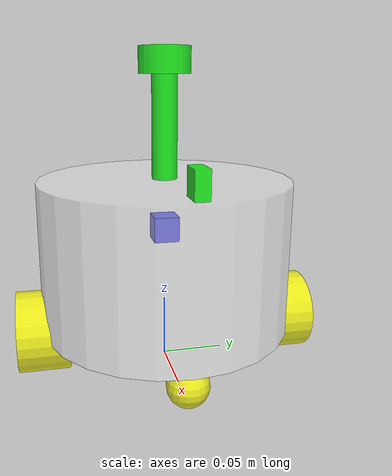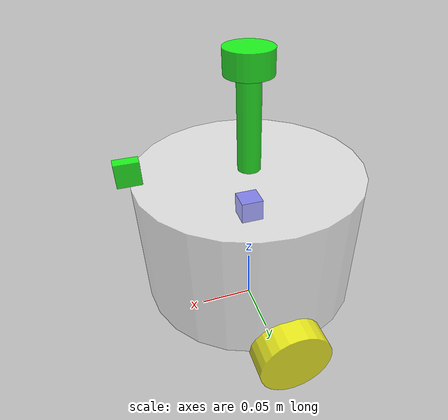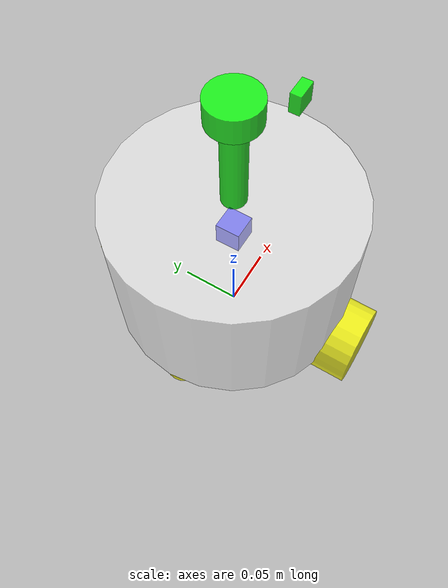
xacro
<?xml version="1.0"?>
<robot xmlns:xacro="http://www.ros.org/wiki/xacro" name="fishbot">

    <!-- 包含基座宏定义 -->
    <xacro:include filename="$(find fishbot_description)/urdf/fishbot/base.urdf.xacro" />
    <!-- 包含传感器宏定义 -->
    <xacro:include filename="$(find fishbot_description)/urdf/fishbot/sensor/imu.urdf.xacro" />
    <xacro:include filename="$(find fishbot_description)/urdf/fishbot/sensor/camera.urdf.xacro" />
    <xacro:include filename="$(find fishbot_description)/urdf/fishbot/sensor/laser.urdf.xacro" />
    <!-- 包含轮子宏定义 -->
    <xacro:include filename="$(find fishbot_description)/urdf/fishbot/actuator/wheel.urdf.xacro" />
    <xacro:include filename="$(find fishbot_description)/urdf/fishbot/actuator/caster.urdf.xacro" />
    <!-- 包含gazebo插件宏定义 -->
    <xacro:include filename="$(find fishbot_description)/urdf/fishbot/plugins/fishbot_gazebo.xacro" />
    <!-- 包含ros2_control宏定义 -->
    <xacro:include filename="$(find fishbot_description)/urdf/fishbot/ros2_control/mobile_base.ros2_control.xacro" />

    <!-- 基座 -->
    <xacro:base_xacro length="0.12" radius="0.1" />
    <!-- 传感器 -->
    <xacro:imu_xacro xyz="0 0 0.02" />
    <xacro:camera_xacro xyz="0.1 0 0.075" />
    <xacro:laser_xacro xyz="0 0 0.1" />
    <!-- 轮子 -->
    <xacro:wheel_xacro wheel_name="left" xyz="0 0.10 -0.06" />
    <xacro:wheel_xacro wheel_name="right" xyz="0 -0.10 -0.06" />
    <xacro:caster_xacro caster_name="front" xyz="0.08 0.0 -0.076" />
    <xacro:caster_xacro caster_name="back" xyz="-0.08 0.0 -0.076" />

</robot>

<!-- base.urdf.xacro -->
<robot xmlns:xacro="http://www.ros.org/wiki/xacro">
    <!-- 包含惯性宏定义 -->
    <xacro:include filename="$(find fishbot_description)/urdf/fishbot/common_inertia.xacro" />

    <!-- 机器人底座 -->
    <xacro:macro name="base_xacro" params="length radius">
        <link name="base_footprint"/>

        <joint name="base_link_joint" type="fixed">
            <parent link="base_footprint"/>
            <child link="base_link"/>
            <origin xyz="0 0 ${length/2.0+0.032-0.001}" rpy="0 0 0"/>
        </joint>

        <link name="base_link">
            <visual>
                <origin xyz="0 0 0" rpy="0 0 0"/>
                <geometry>
                    <cylinder length="${length}" radius="${radius}" />
                </geometry>
                <material name="white">
                    <color rgba="1.0 1.0 1.0 0.5"/>
                </material>
            </visual>

            <collision>
                <origin xyz="0 0 0" rpy="0 0 0"/>
                <geometry>
                    <cylinder length="${length}" radius="${radius}" />
                </geometry>
            </collision>

            <inertial>
                <xacro:cylinder_inertia m="1.0" r="${radius}" h="${length}" />
            </inertial>
        </link>
    </xacro:macro>
</robot>

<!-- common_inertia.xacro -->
<robot xmlns:xacro="http://ros.org/wiki/xacro">
    <xacro:macro name="box_inertia" params="m w h d">
        <mass value="${m}" />
        <inertia ixx="${(m/12) * (h*h + d*d)}" ixy="0.0" ixz="0.0"
                 iyy="${(m/12) * (w*w + d*d)}" iyz="0.0"
                 izz="${(m/12) * (w*w + h*h)}" />
    </xacro:macro>

    <xacro:macro name="cylinder_inertia" params="m r h">
        <mass value="${m}" />
        <inertia ixx="${(m/12) * (3*r*r + h*h)}" ixy="0.0" ixz="0.0"
                 iyy="${(m/12) * (3*r*r + h*h)}" iyz="0.0"
                 izz="${(m/2) * r*r}" />
    </xacro:macro>

    <xacro:macro name="sphere_inertia" params="m r">
        <mass value="${m}" />
        <inertia ixx="${(2.0/5.0) * m * r*r}" ixy="0.0" ixz="0.0"
                 iyy="${(2.0/5.0) * m * r*r}" iyz="0.0"
                 izz="${(2.0/5.0) * m * r*r}" />
    </xacro:macro>
</robot>

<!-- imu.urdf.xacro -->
<robot xmlns:xacro="http://www.ros.org/wiki/xacro">
    <xacro:include filename="$(find fishbot_description)/urdf/fishbot/common_inertia.xacro" />
    <!-- IMU传感器 -->
    <xacro:macro name="imu_xacro" params="xyz">
        <link name="imu_link">
            <visual>
                <origin xyz="0 0 0" rpy="0 0 0"/>
                <geometry>
                    <box size="0.02 0.02 0.02" />
                </geometry>
                <material name="black">
                    <color rgba="0 0 0.8" />
                </material>
            </visual>

            <collision>
                <origin xyz="0 0 0" rpy="0 0 0"/>
                <geometry>
                    <box size="0.02 0.02 0.02" />
                </geometry>
                <material name="black">
                    <color rgba="0 0 0.8" />
                </material>
            </collision>

            <inertial>
                <xacro:box_inertia m="0.05" w="0.02" h="0.02" d="0.02" />
            </inertial>
        </link>

        <joint name="imu_joint" type="fixed">
            <parent link="base_link"/>
            <child link="imu_link"/>
            <origin xyz="${xyz}" />
        </joint>
    </xacro:macro>
</robot>

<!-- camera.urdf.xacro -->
<robot xmlns:xacro="http://www.ros.org/wiki/xacro">
    <xacro:include filename="$(find fishbot_description)/urdf/fishbot/common_inertia.xacro" />
    <!-- RGB-D相机传感器 -->
    <xacro:macro name="camera_xacro" params="xyz">
        <link name="camera_link">
            <visual>
                <origin xyz="0 0 0" rpy="0 0 0" />
                <geometry>
                    <box size="0.02 0.01 0.02" />
                </geometry>
                <material name="green">
                    <color rgba="0 1.0 0 0.8" />
                </material>
            </visual>

            <collision>
                <origin xyz="0 0 0" rpy="0 0 0" />
                <geometry>
                    <box size="0.02 0.01 0.02" />
                </geometry>
                <material name="green">
                    <color rgba="0 1.0 0 0.8" />
                </material>
            </collision>

            <inertial>
                <xacro:box_inertia m="0.1" w="0.02" h="0.01" d="0.02" />
            </inertial>
        </link>

        <joint name="camera_joint" type="fixed">
            <parent link="base_link" />
            <child link="camera_link" />
            <origin xyz="${xyz}" />
        </joint>

    </xacro:macro>
</robot>

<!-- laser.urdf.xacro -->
<robot xmlns:xacro="http://www.ros.org/wiki/xacro">
    <xacro:include filename="$(find fishbot_description)/urdf/fishbot/common_inertia.xacro" />

    <!-- 激光雷达传感器 -->
    <xacro:macro name="laser_xacro" params="xyz">

        <!-- 雷达支撑柱 -->
        <link name="laser_cylinder_link">
            <visual>
                <origin xyz="0 0 0" rpy="0 0 0"/>
                <geometry>
                    <cylinder length="0.1" radius="0.01"/>
                </geometry>
                <material name="green">
                    <color rgba="0 1.0 0 0.8"/>
                </material>
            </visual>

            <collision>
                <origin xyz="0 0 0" rpy="0 0 0"/>
                <geometry>
                    <cylinder length="0.1" radius="0.01"/>
                </geometry>
            </collision>

            <inertial>
                <xacro:cylinder_inertia m="0.05" r="0.01" h="0.1"/>
            </inertial>
        </link>

        <joint name="laser_cylinder_joint" type="fixed">
            <parent link="base_link"/>
            <child link="laser_cylinder_link"/>
            <origin xyz="${xyz}"/>
        </joint>

        <!-- 雷达主体 -->
        <link name="laser_link">
            <visual>
                <origin xyz="0 0 0" rpy="0 0 0"/>
                <geometry>
                    <cylinder length="0.02" radius="0.02"/>
                </geometry>
                <material name="green">
                    <color rgba="0 1.0 0 0.8"/>
                </material>
            </visual>

            <collision>
                <origin xyz="0 0 0" rpy="0 0 0"/>
                <geometry>
                    <cylinder length="0.02" radius="0.02"/>
                </geometry>
            </collision>

            <inertial>
                <xacro:cylinder_inertia m="0.10" r="0.02" h="0.02"/>
            </inertial>
        </link>

        <joint name="laser_joint" type="fixed">
            <parent link="laser_cylinder_link"/>
            <child link="laser_link"/>
            <origin xyz="0 0 0.05"/>
        </joint>

    </xacro:macro>
</robot>

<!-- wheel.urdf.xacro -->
<robot xmlns:xacro="http://www.ros.org/wiki/xacro">
    <xacro:include filename="$(find fishbot_description)/urdf/fishbot/common_inertia.xacro" />
    <!-- 轮子宏定义 -->
    <xacro:macro name="wheel_xacro" params="wheel_name xyz">
        <link name="${wheel_name}_wheel_link">
            <visual>
                <origin xyz="0 0 0" rpy="1.57079 0 0" />
                <geometry>
                    <cylinder radius="0.032" length="0.04"/>
                </geometry>
                <material name="yellow">
                    <color rgba="1.0 1.0 0 0.8" />
                </material>
            </visual>

            <collision>
                <origin xyz="0 0 0" rpy="1.57079 0 0" />
                <geometry>
                    <cylinder radius="0.032" length="0.04"/>
                </geometry>
                <material name="yellow">
                    <color rgba="1.0 1.0 0 0.8" />
                </material>
            </collision>

            <inertial>
                <xacro:cylinder_inertia m="0.05" r="0.032" h="0.04" />
            </inertial>
        </link>

        <joint name="${wheel_name}_wheel_joint" type="continuous">
            <parent link="base_link"/>
            <child link="${wheel_name}_wheel_link"/>
            <origin xyz="${xyz}" rpy="0 0 0" />
            <axis xyz="0 1 0"/>

            <limit effort="100" velocity="100" />
            <dynamics damping="0.1" friction="0.1" />
        </joint>

        <!-- 轮子物理属性配置-->
        <gazebo reference="${wheel_name}_wheel_link">
            <mu1>20.0</mu1>
            <mu2>20.0</mu2>
            <kp>1000000000.0</kp>
            <kd>1.0</kd>
        </gazebo>

    </xacro:macro>
</robot>

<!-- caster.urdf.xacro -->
<robot xmlns:xacro="http://www.ros.org/wiki/xacro">
    <xacro:include filename="$(find fishbot_description)/urdf/fishbot/common_inertia.xacro" />
    <!-- 万向轮 -->
    <xacro:macro name="caster_xacro" params="caster_name xyz">
        <link name="${caster_name}_caster_link">
            <visual>
                <origin xyz="0 0 0" rpy="0 0 0" />
                <geometry>
                    <sphere radius="0.016" />
                </geometry>
                <material name="yellow">
                    <color rgba="1.0 1.0 0.0 0.8" />
                </material>
            </visual>

            <collision>
                <origin xyz="0 0 0" rpy="0 0 0" />
                <geometry>
                    <sphere radius="0.016" />
                </geometry>
                <material name="yellow">
                    <color rgba="1.0 1.0 0.0 0.8" />
                </material>
            </collision>

            <inertial>
                <xacro:sphere_inertia m="0.05" r="0.016" />
            </inertial>
        </link>

        <joint name="${caster_name}_caster_joint" type="fixed">
            <parent link="base_link"/>
            <child link="${caster_name}_caster_link"/>
            <origin xyz="${xyz}" />
            <axis xyz="0 0 0" />
        </joint>

        <!-- 万向轮物理属性配置-->
        <gazebo reference="${caster_name}_caster_link">
            <mu1>0.0</mu1>
            <mu2>0.0</mu2>
            <kp>1000000000.0</kp>
            <kd>1.0</kd>
        </gazebo>

    </xacro:macro>
</robot>
